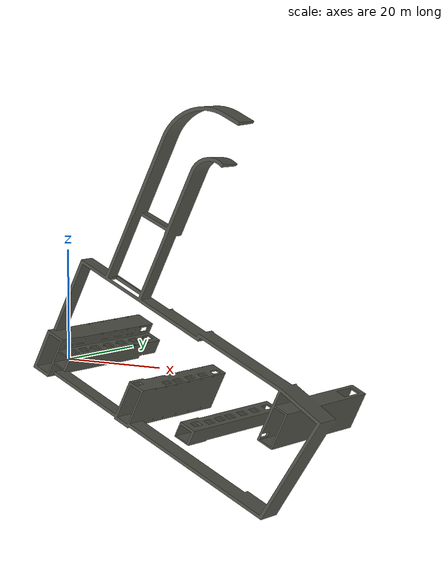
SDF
<?xml version="1.0"?>
<sdf version="1.6">
  <model name="bim_site">
    <static>true</static>
    <link name="link">
      <pose>0 0 0 0 0 0</pose>
      <collision name="collision">
        <geometry>
          <mesh>
            <uri>meshes/bim_world_1.dae</uri>
            <scale>1 1 1</scale>
          </mesh>
        </geometry>
      </collision>
      <visual name="visual">
        <geometry>
          <mesh>
            <uri>meshes/bim_world_1.dae</uri>
            <scale>1 1 1</scale>
          </mesh>
        </geometry>
      </visual>
    </link>
  </model>
</sdf>
